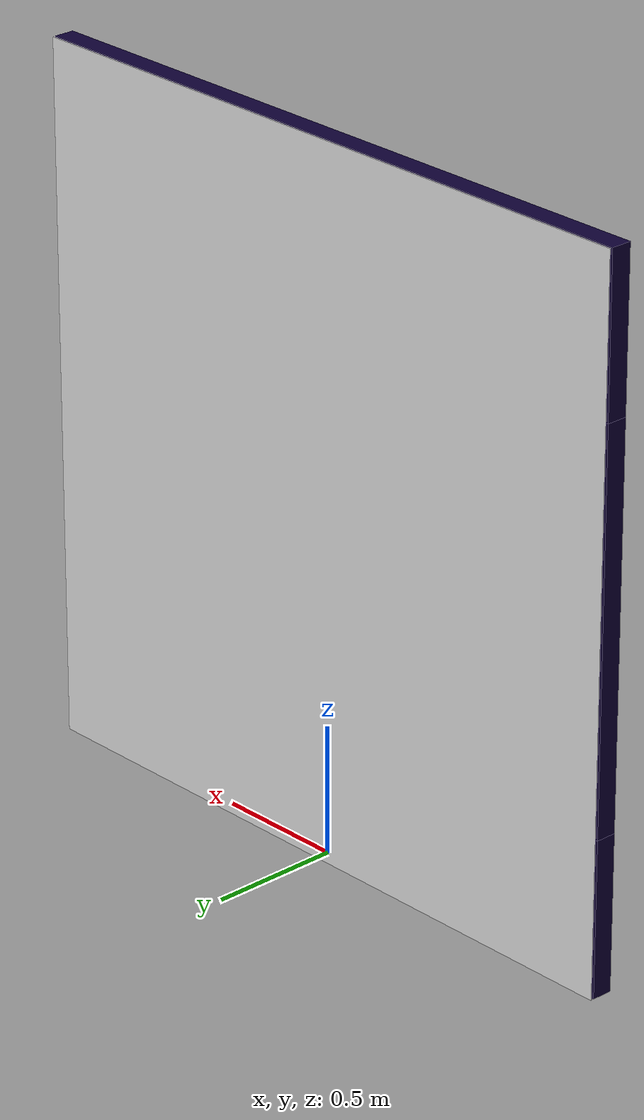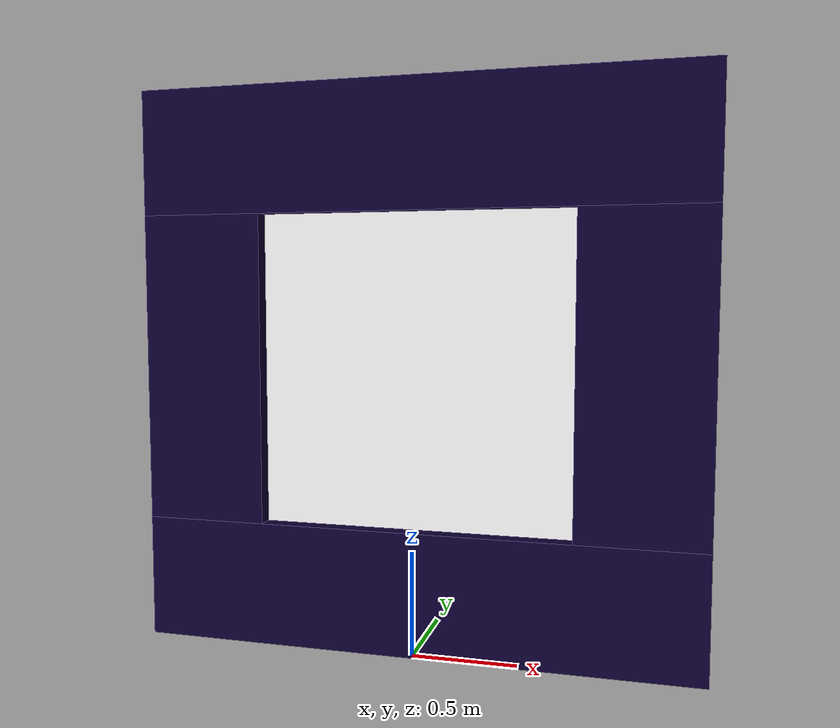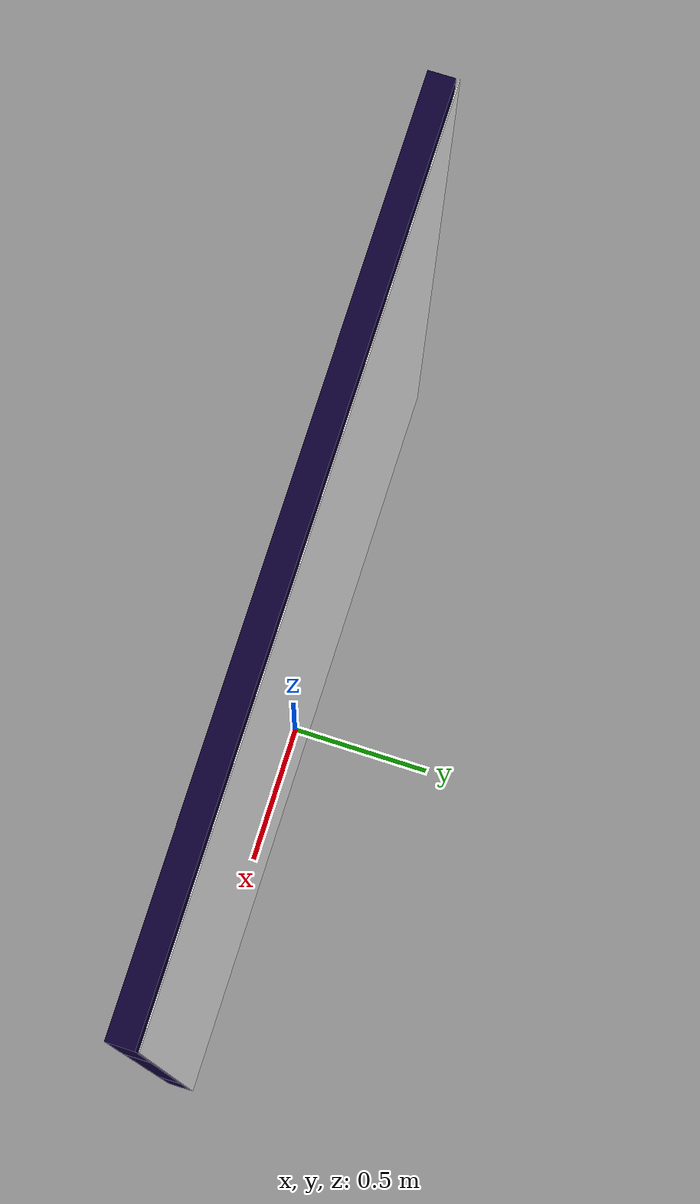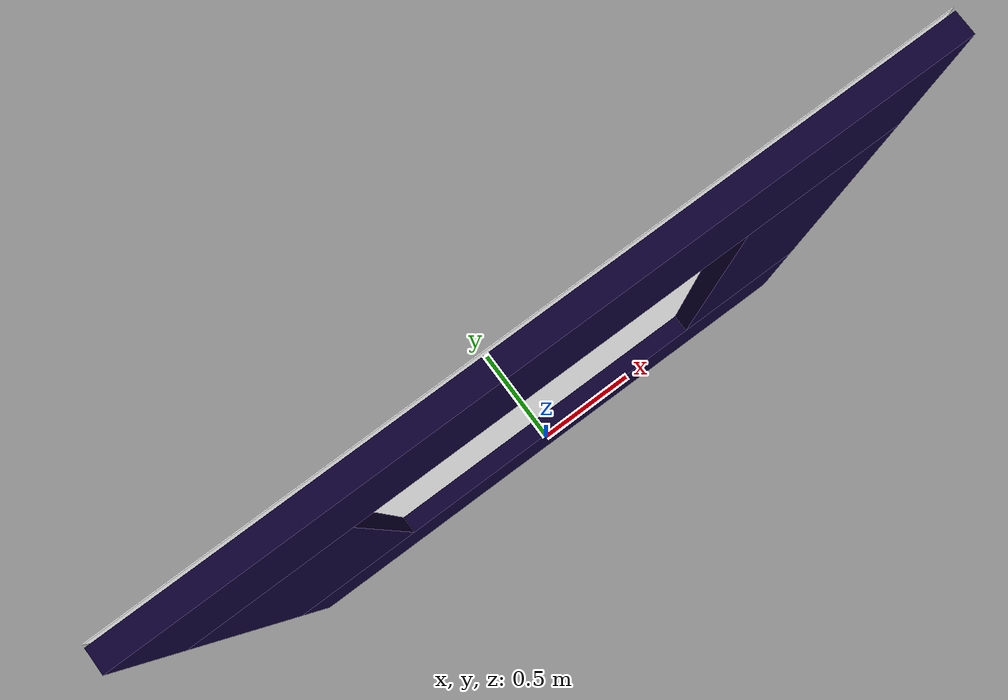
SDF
<?xml version="1.0" ?>
<sdf version="1.9">
  <model name="gate">
    <static>true</static>
    <!-- Definición del primer panel lateral -->
    <link name="side_panel_left">
      <pose>1.05 0 1.35 0 0 0</pose>
      <collision name="collision">
        <geometry>
          <box>
            <size>0.6 0.08 1.5</size>
          </box>
        </geometry>
      </collision>
      <visual name="visual">
        <geometry>
          <box>
            <size>0.6 0.08 1.5</size>
          </box>
        </geometry>
        <material>
          <ambient>0.05 0 0.2 1</ambient>
          <diffuse>0.05 0 0.2 1</diffuse>

        </material>
      </visual>
    </link>
    <!-- Definición del segundo panel lateral -->
    <link name="side_panel_right">
      <pose>-1.05 0 1.35 0 0 0</pose>
      <collision name="collision">
        <geometry>
          <box>
            <size>0.6 0.08 1.5</size>
          </box>
        </geometry>
      </collision>
      <visual name="visual">
        <geometry>
          <box>
            <size>0.6 0.08 1.5</size>
          </box>
        </geometry>
        <material>
          <ambient>0.05 0 0.2 1</ambient>
          <diffuse>0.05 0 0.2 1</diffuse>
        </material>
      </visual>
    </link>
    <!-- Definición de la barra superior -->
    <link name="top_bar">
      <pose>0 0 2.4 0 0 0</pose>
      <collision name="collision">
        <geometry>
          <box>
            <size>2.7 0.08 0.6</size>
          </box>
        </geometry>
      </collision>
      <visual name="visual">
        <geometry>
          <box>
            <size>2.7 0.08 0.6</size>
          </box>
        </geometry>
        <material>
          <ambient>0.05 0 0.2 1</ambient>
          <diffuse>0.05 0 0.2 1</diffuse>
        </material>
      </visual>
    </link>
    <!-- Definición de la barra inferior -->
    <link name="bottom_bar">
      <pose>0 0 0.3 0 0 0</pose>
      <collision name="collision">
        <geometry>
          <box>
            <size>2.7 0.08 0.6</size>
          </box>
        </geometry>
      </collision>
      <visual name="visual">
        <geometry>
          <box>
            <size>2.7 0.08 0.6</size>
          </box>
        </geometry>
        <material>
          <ambient>0.05 0 0.2 1</ambient>
          <diffuse>0.05 0 0.2 1</diffuse>
        </material>
      </visual>
    </link>
    <link name="gate_banner">
      <!-- Ajusta pose para que "tapice" el frente del gate -->
      <pose>0 0.05 1.35 1.5708 0 3.1416 </pose>
      <visual name="banner_visual">
        <cast_shadows>false</cast_shadows>
        <geometry>
          <plane>
            <normal>0 0 1</normal>
            <size>2.7 2.7</size> <!-- Ajustar a tu gusto -->
          </plane>
        </geometry>
        <material>
          <ambient>1 1 1 1</ambient>
          <diffuse>1 1 1 1</diffuse>
          <pbr>
            <metal>
              <albedo_map>textures/Gate_design.png</albedo_map>
              <roughness>0.6</roughness>
              <metalness>0</metalness>
            </metal>
          </pbr>
        </material>
      </visual>
      <!-- Sin collision para que sea "solo visual" -->
    </link>
  </model>
</sdf>
